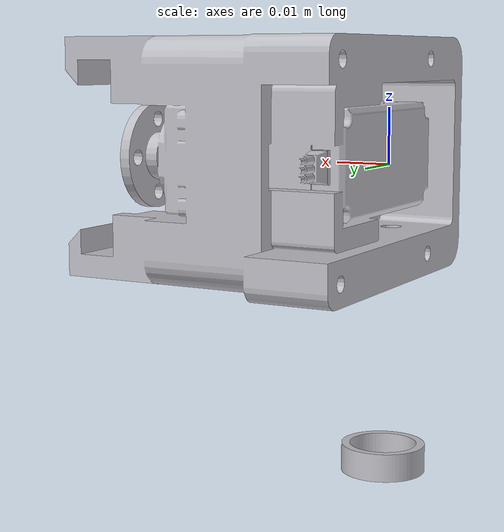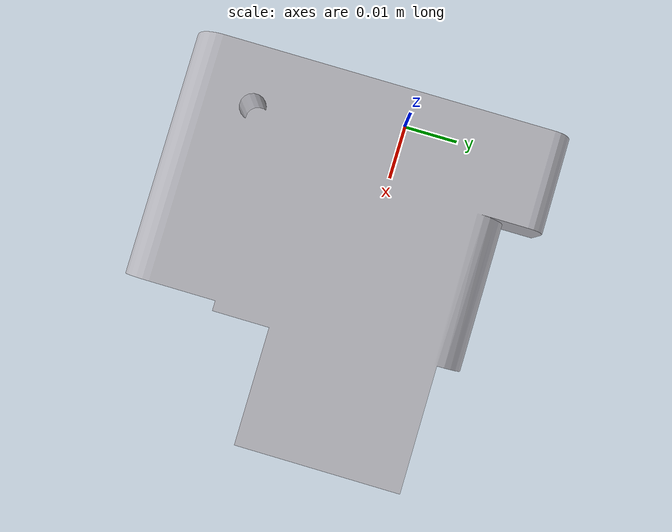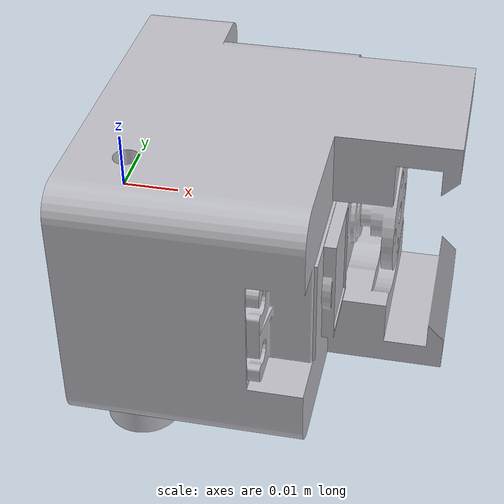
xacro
<?xml version="1.0" ?>
<robot name="vacuum_gripper" xmlns:xacro="http://www.ros.org/wiki/xacro">

<xacro:include filename="$(find vacuum_gripper_description)/urdf/vacuum_gripper.trans" />
<xacro:include filename="$(find vacuum_gripper_description)/urdf/vacuum_gripper.gazebo" />
<link name="gripper_base_link">
  <inertial>
    <origin xyz="0.012152318878142441 0.00989984571459361 -0.05720243618145755" rpy="0 0 0"/>
    <mass value="0.8034775156193473"/>
    <inertia ixx="0.000793" iyy="0.000806" izz="0.000631" ixy="9.2e-05" iyz="9e-05" ixz="-6.1e-05"/>
  </inertial>
  <visual>
    <origin xyz="0 0 0" rpy="0 0 0"/>
    <geometry>
      <mesh filename="package://vacuum_gripper_description/meshes/gripper_base_link.stl" scale="0.001 0.001 0.001"/>
    </geometry>
    <material name="silver"/>
  </visual>
  <collision>
    <origin xyz="0 0 0" rpy="0 0 0"/>
    <geometry>
      <mesh filename="package://vacuum_gripper_description/meshes/gripper_base_link.stl" scale="0.001 0.001 0.001"/>
    </geometry>
  </collision>
</link>

<link name="gripper_link_1">
  <inertial>
    <origin xyz="2.943394468511826e-07 2.2149824879902726e-07 -0.0024999999999999675" rpy="0 0 0"/>
    <mass value="0.002457048975733048"/>
    <inertia ixx="0.0" iyy="0.0" izz="0.0" ixy="-0.0" iyz="0.0" ixz="0.0"/>
  </inertial>
  <visual>
    <origin xyz="-0.000371 -2.9e-05 0.0505" rpy="0 0 0"/>
    <geometry>
      <mesh filename="package://vacuum_gripper_description/meshes/gripper_link_1.stl" scale="0.001 0.001 0.001"/>
    </geometry>
    <material name="silver"/>
  </visual>
  <collision>
    <origin xyz="-0.000371 -2.9e-05 0.0505" rpy="0 0 0"/>
    <geometry>
      <mesh filename="package://vacuum_gripper_description/meshes/gripper_link_1.stl" scale="0.001 0.001 0.001"/>
    </geometry>
  </collision>
</link>

<joint name="gripper_joint" type="prismatic">
  <origin xyz="0.000371 2.9e-05 -0.0505" rpy="0 0 0"/>
  <parent link="gripper_base_link"/>
  <child link="gripper_link_1"/>
  <axis xyz="-0.0 -0.0 -1.0"/>
  <limit upper="0.02" lower="0.0" effort="100" velocity="100"/>
</joint>

</robot>

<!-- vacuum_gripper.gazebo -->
<robot name="vacuum_gripper" xmlns:xacro="http://www.ros.org/wiki/xacro" >

<xacro:property name="body_color" value="Gazebo/Silver" />

<gazebo>
  <plugin name="control" filename="libgazebo_ros_control.so"/>
</gazebo>
<gazebo reference="gripper_base_link">
  <material>${body_color}</material>
  <mu1>0.2</mu1>
  <mu2>0.2</mu2>
  <selfCollide>true</selfCollide>
  <gravity>true</gravity>
</gazebo>

<gazebo reference="gripper_link_1">
  <material>${body_color}</material>
  <mu1>0.2</mu1>
  <mu2>0.2</mu2>
  <selfCollide>true</selfCollide>
</gazebo>

</robot>
